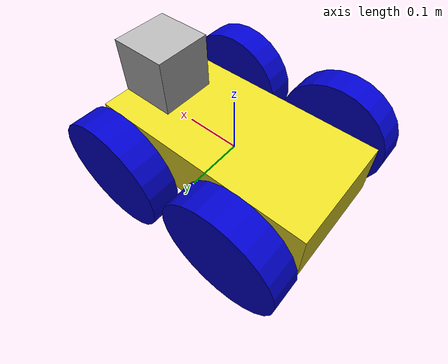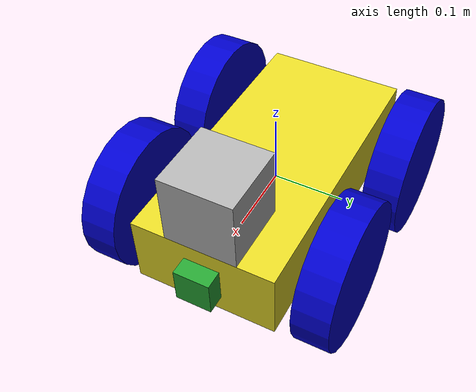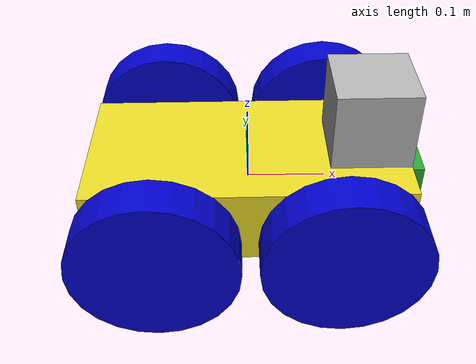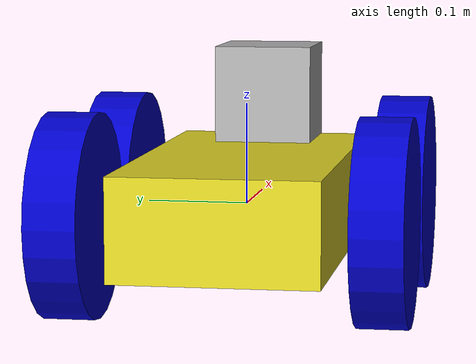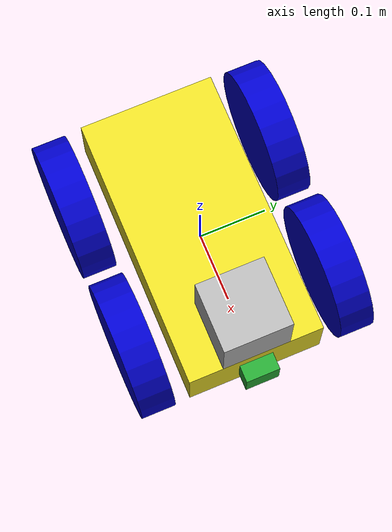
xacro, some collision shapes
<?xml version='1.0'?>

<robot name="custom_bot" xmlns:xacro="http://www.ros.org/wiki/xacro">
<material name="blue">
   <color rgba="0 0 0.8 1"/>
</material>
<material name="black">
   <color rgba="0 0 0 1"/>
</material>
<material name="white">
   <color rgba="1 1 1 1"/>
</material>
  <xacro:include filename="$(find udacity_bot)/urdf/custom_bot.gazebo" />
  <link name="robot_footprint"></link>

  <joint name="robot_footprint_joint" type="fixed">
    <origin xyz="0 0 0" rpy="0 0 0" />
    <parent link="robot_footprint"/>
    <child link="chassis" />
  </joint>

  <link name='chassis'>
    <pose>0 0 0.1 0 0 0</pose>

    <inertial>
      <mass value="15.0"/>
      <origin xyz="0.0 0 0" rpy=" 0 0 0"/>
      <inertia
          ixx="0.1" ixy="0" ixz="0"
          iyy="0.1" iyz="0"
          izz="0.1"
      />
    </inertial>

    <collision name='collision'>
      <origin xyz="0 0 0" rpy=" 0 0 0"/>
      <geometry>
        <box size=".4 .2 .1"/>
      </geometry>
    </collision>

    <visual name='chassis_visual'>
      <origin xyz="0 0 0" rpy=" 0 0 0"/>
      <geometry>
        <box size=".4 .2 .1"/>
      </geometry>
    </visual>
  </link>

  <link name='leftfront_wheel'>
    <inertial>
      <mass value="5.0"/>
      <origin xyz="0.0 0 0" rpy=" 0 1.5707 1.5707"/>
      <inertia
          ixx="0.1" ixy="0" ixz="0"
          iyy="0.1" iyz="0"
          izz="0.1"
      />
    </inertial>

    <collision name='lfw_collision'>
      <origin xyz="0 0 0" rpy=" 0 1.5707 1.5707"/>
      <geometry>
        <cylinder radius ="0.1" length="0.05"/>
      </geometry>
    </collision>

    <visual name='lfw_visual'>
      <origin xyz="0 0 0" rpy=" 0 1.5707 1.5707"/>
      <geometry>
         <cylinder radius ="0.1" length="0.05"/>
      </geometry>
      <material name="blue"/>
    </visual>

  </link>
  <link name='rightfront_wheel'>
    <inertial>
      <mass value="5.0"/>
      <origin xyz="0.0 0 0" rpy=" 0 1.5707 1.5707"/>
      <inertia
          ixx="0.1" ixy="0" ixz="0"
          iyy="0.1" iyz="0"
          izz="0.1"
      />
    </inertial>

    <collision name='rfw_collision'>
      <origin xyz="0 0 0" rpy=" 0 1.5707 1.5707"/>
      <geometry>
        <cylinder radius ="0.1" length="0.05"/>
      </geometry>
    </collision>

    <visual name='rfw_visual'>
      <origin xyz="0 0 0" rpy=" 0 1.5707 1.5707"/>
      <geometry>
         <cylinder radius ="0.1" length="0.05"/>
      </geometry>
      <material name="blue"/>
    </visual>

  </link>

  <link name='leftrear_wheel'>
    <inertial>
      <mass value="5.0"/>
      <origin xyz="0.0 0 0" rpy=" 0 1.5707 1.5707"/>
      <inertia
          ixx="0.1" ixy="0" ixz="0"
          iyy="0.1" iyz="0"
          izz="0.1"
      />
    </inertial>

    <collision name='lrw_collision'>
      <origin xyz="0 0 0" rpy=" 0 1.5707 1.5707"/>
      <geometry>
        <cylinder radius ="0.1" length="0.05"/>
      </geometry>
    </collision>

    <visual name='lrw_visual'>
      <origin xyz="0 0 0" rpy=" 0 1.5707 1.5707"/>
      <geometry>
         <cylinder radius ="0.1" length="0.05"/>
      </geometry>
      <material name="blue"/>
    </visual>

  </link>
  <link name='rightrear_wheel'>
    <inertial>
      <mass value="5.0"/>
      <origin xyz="0.0 0 0" rpy=" 0 1.5707 1.5707"/>
      <inertia
          ixx="0.1" ixy="0" ixz="0"
          iyy="0.1" iyz="0"
          izz="0.1"
      />
    </inertial>

    <collision name='rrw_collision'>
      <origin xyz="0 0 0" rpy=" 0 1.5707 1.5707"/>
      <geometry>
        <cylinder radius ="0.1" length="0.05"/>
      </geometry>
    </collision>

    <visual name='rrw_visual'>
      <origin xyz="0 0 0" rpy=" 0 1.5707 1.5707"/>
      <geometry>
         <cylinder radius ="0.1" length="0.05"/>
      </geometry>
      <material name="blue"/>
    </visual>

  </link>
  <joint type="continuous" name="leftfront_wheel_hinge">
    <origin xyz="0.11 0.15 0" rpy="0 0 0"/>
    <child link="leftfront_wheel"/>
    <parent link="chassis"/>
    <axis xyz="0 1 0" rpy="0 0 0"/>
    <limit effort="10000" velocity="1000"/>
    <dynamics damping="1.0" friction="1.0"/>
  </joint>
  <joint type="continuous" name="rightfront_wheel_hinge">
    <origin xyz="0.11 -0.15 0" rpy="0 0 0"/>
    <child link="rightfront_wheel"/>
    <parent link="chassis"/>
    <axis xyz="0 1 0" rpy="0 0 0"/>
    <limit effort="10000" velocity="1000"/>
    <dynamics damping="1.0" friction="1.0"/>
  </joint>
  <joint type="continuous" name="leftrear_wheel_hinge">
    <origin xyz="-0.11 0.15 0" rpy="0 0 0"/>
    <child link="leftrear_wheel"/>
    <parent link="chassis"/>
    <axis xyz="0 1 0" rpy="0 0 0"/>
    <limit effort="10000" velocity="1000"/>
    <dynamics damping="1.0" friction="1.0"/>
  </joint>
  <joint type="continuous" name="rightrear_wheel_hinge">
    <origin xyz="-0.11 -0.15 0" rpy="0 0 0"/>
    <child link="rightrear_wheel"/>
    <parent link="chassis"/>
    <axis xyz="0 1 0" rpy="0 0 0"/>
    <limit effort="10000" velocity="1000"/>
    <dynamics damping="1.0" friction="1.0"/>
  </joint>
  <link name='camera'>
    <inertial>
      <mass value="0.1"/>
      <origin xyz="0.0 0 0" rpy=" 0 0 0"/>
      <inertia
          ixx="1e-6" ixy="0" ixz="0"
          iyy="1e-6" iyz="0"
          izz="1e-6"
      />
    </inertial>

    <collision name='camera_collision'>
      <origin xyz="0 0 0" rpy=" 0 0 0"/>
      <geometry>
        <box size=".05 .05 .05"/>
      </geometry>
    </collision>

    <visual name='camera_visual'>
      <origin xyz="0 0 0" rpy=" 0 0 0"/>
      <geometry>
         <box size=".05 .05 .05"/>
      </geometry>
    </visual>
  </link>
  <joint type="fixed" name="camera_joint">
    <origin xyz="0.2 0 0" rpy="0 0 0"/>
    <child link="camera"/>
    <parent link="chassis"/>
  </joint>

  <link name='hokuyo'>
    <inertial>
      <mass value="0.1"/>
      <origin xyz="0.0 0 0" rpy=" 0 0 0"/>
      <inertia
          ixx="1e-6" ixy="0" ixz="0"
          iyy="1e-6" iyz="0"
          izz="1e-6"
      />
    </inertial>

    <collision name='hokuyo_collision'>
      <origin xyz="0 0 0" rpy=" 0 0 0"/>
      <geometry>
        <box size=".1 .1 .1"/>
      </geometry>
    </collision>

    <visual name='hokuyo_visual'>
      <origin xyz="0 0 0" rpy=" 0 0 0"/>
      <geometry>
         <mesh filename="package://udacity_bot/meshes/hokuyo.dae"/>
      </geometry>
    </visual>
  </link>

  <joint type="fixed" name="hokuyo_joint">
    <origin xyz=".15 0 .1" rpy="0 0 0"/>
    <child link="hokuyo"/>
    <parent link="chassis"/>
  </joint>
</robot>
